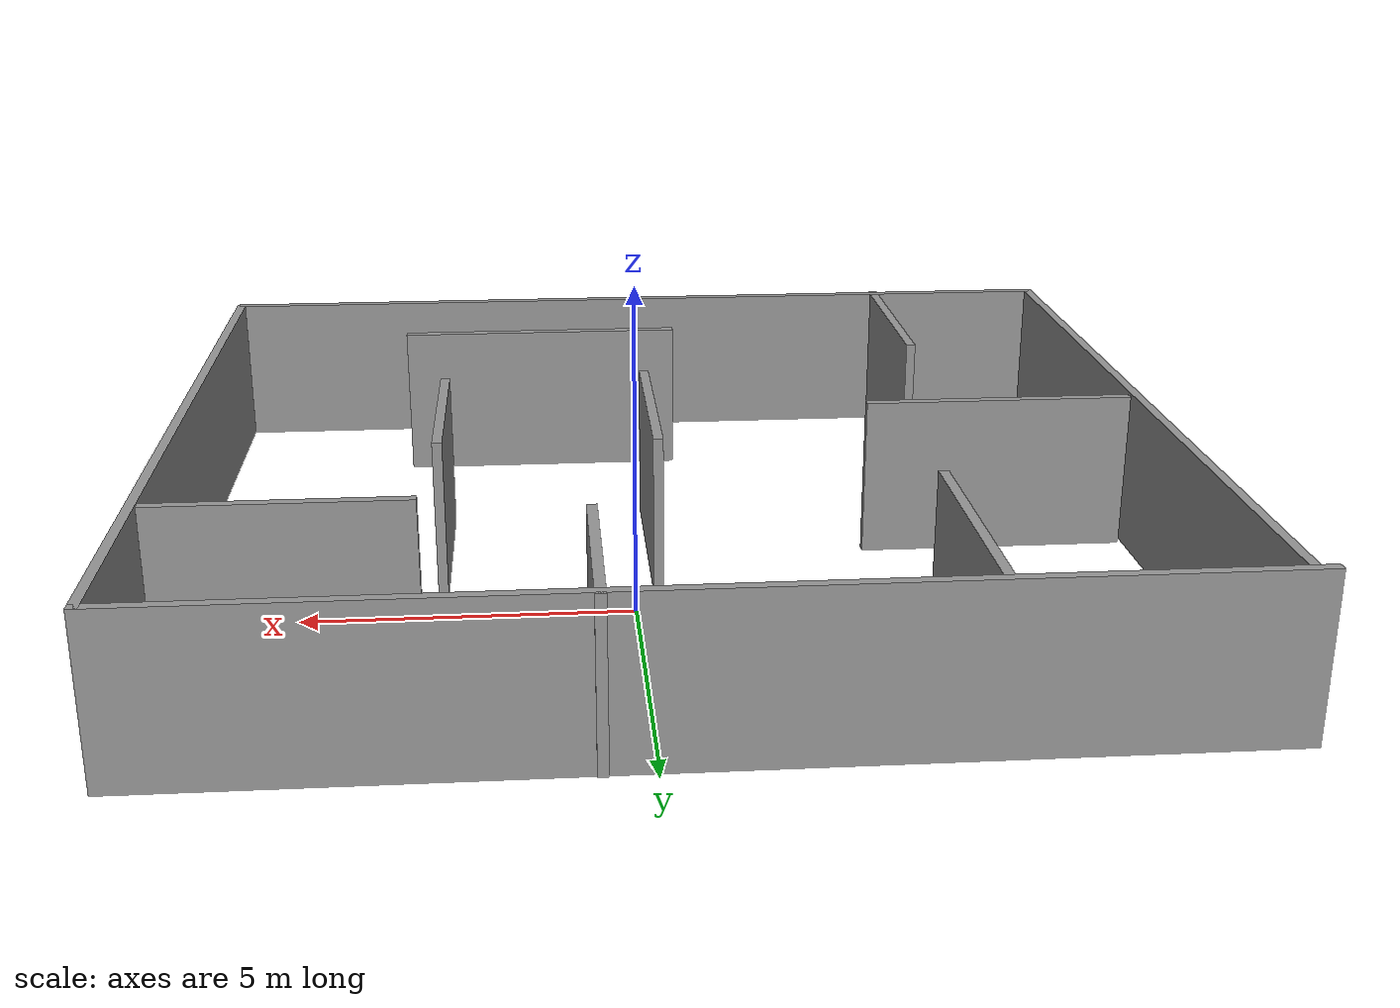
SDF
<?xml version='1.0'?>
<sdf version='1.7'>
  <model name='maze_house'>
    <pose>-0.754672 -2.09552 0 0 -0 0</pose>
    <link name='Wall_23'>
      <collision name='Wall_23_Collision'>
        <geometry>
          <box>
            <size>3.75 0.15 2.5</size>
          </box>
        </geometry>
        <pose>0 0 1.25 0 -0 0</pose>
      </collision>
      <visual name='Wall_23_Visual'>
        <pose>0 0 1.25 0 -0 0</pose>
        <geometry>
          <box>
            <size>3.75 0.15 2.5</size>
          </box>
        </geometry>
        <material>
          <script>
            <uri>file://media/materials/scripts/gazebo.material</uri>
            <name>Gazebo/Grey</name>
          </script>
          <ambient>1 1 1 1</ambient>
        </material>
        <meta>
          <layer>0</layer>
        </meta>
      </visual>
      <pose>-4.39045 -5.15967 0 0 -0 1.5708</pose>
    </link>
    <link name='Wall_27'>
      <collision name='Wall_27_Collision'>
        <geometry>
          <box>
            <size>4.75 0.15 2.5</size>
          </box>
        </geometry>
        <pose>0 0 1.25 0 -0 0</pose>
      </collision>
      <visual name='Wall_27_Visual'>
        <pose>0 0 1.25 0 -0 0</pose>
        <geometry>
          <box>
            <size>4.75 0.15 2.5</size>
          </box>
        </geometry>
        <material>
          <script>
            <uri>file://media/materials/scripts/gazebo.material</uri>
            <name>Gazebo/Grey</name>
          </script>
          <ambient>1 1 1 1</ambient>
        </material>
        <meta>
          <layer>0</layer>
        </meta>
      </visual>
      <pose>2.07306 -4.69287 0 0 -0 0</pose>
    </link>
    <link name='Wall_29'>
      <collision name='Wall_29_Collision'>
        <geometry>
          <box>
            <size>3.25 0.15 2.5</size>
          </box>
        </geometry>
        <pose>0 0 1.25 0 -0 0</pose>
      </collision>
      <visual name='Wall_29_Visual'>
        <pose>0 0 1.25 0 -0 0</pose>
        <geometry>
          <box>
            <size>3.25 0.15 2.5</size>
          </box>
        </geometry>
        <material>
          <script>
            <uri>file://media/materials/scripts/gazebo.material</uri>
            <name>Gazebo/Grey</name>
          </script>
          <ambient>1 1 1 1</ambient>
        </material>
        <meta>
          <layer>0</layer>
        </meta>
      </visual>
      <pose>3.659 -0.275171 0 0 -0 -1.5708</pose>
    </link>
    <link name='Wall_35'>
      <collision name='Wall_35_Collision'>
        <geometry>
          <box>
            <size>3.5 0.15 2.5</size>
          </box>
        </geometry>
        <pose>0 0 1.25 0 -0 0</pose>
      </collision>
      <visual name='Wall_35_Visual'>
        <pose>0 0 1.25 0 -0 0</pose>
        <geometry>
          <box>
            <size>3.5 0.15 2.5</size>
          </box>
        </geometry>
        <material>
          <script>
            <uri>file://media/materials/scripts/gazebo.material</uri>
            <name>Gazebo/Grey</name>
          </script>
          <ambient>1 1 1 1</ambient>
        </material>
        <meta>
          <layer>0</layer>
        </meta>
      </visual>
      <pose>0.374451 -0.35391 0 0 -0 -1.5708</pose>
    </link>
    <link name='Wall_37'>
      <collision name='Wall_37_Collision'>
        <geometry>
          <box>
            <size>4.25 0.15 2.5</size>
          </box>
        </geometry>
        <pose>0 0 1.25 0 -0 0</pose>
      </collision>
      <visual name='Wall_37_Visual'>
        <pose>0 0 1.25 0 -0 0</pose>
        <geometry>
          <box>
            <size>4.25 0.15 2.5</size>
          </box>
        </geometry>
        <material>
          <script>
            <uri>file://media/materials/scripts/gazebo.material</uri>
            <name>Gazebo/Grey</name>
          </script>
          <ambient>1 1 1 1</ambient>
        </material>
        <meta>
          <layer>0</layer>
        </meta>
      </visual>
      <pose>-5.16239 -0.113008 0 0 -0 0</pose>
    </link>
    <link name='Wall_4'>
      <collision name='Wall_4_Collision'>
        <geometry>
          <box>
            <size>15.5 0.15 2.5</size>
          </box>
        </geometry>
        <pose>0 0 1.25 0 -0 0</pose>
      </collision>
      <visual name='Wall_4_Visual'>
        <pose>0 0 1.25 0 -0 0</pose>
        <geometry>
          <box>
            <size>15.5 0.15 2.5</size>
          </box>
        </geometry>
        <material>
          <script>
            <uri>file://media/materials/scripts/gazebo.material</uri>
            <name>Gazebo/Grey</name>
          </script>
          <ambient>1 1 1 1</ambient>
        </material>
        <meta>
          <layer>0</layer>
        </meta>
      </visual>
      <pose>-0 6.9187 0 0 -0 0</pose>
    </link>
    <link name='Wall_41'>
      <collision name='Wall_41_Collision'>
        <geometry>
          <box>
            <size>3.75 0.15 2.5</size>
          </box>
        </geometry>
        <pose>0 0 1.25 0 -0 0</pose>
      </collision>
      <visual name='Wall_41_Visual'>
        <pose>0 0 1.25 0 -0 0</pose>
        <geometry>
          <box>
            <size>3.75 0.15 2.5</size>
          </box>
        </geometry>
        <material>
          <script>
            <uri>file://media/materials/scripts/gazebo.material</uri>
            <name>Gazebo/Grey</name>
          </script>
          <ambient>1 1 1 1</ambient>
        </material>
        <meta>
          <layer>0</layer>
        </meta>
      </visual>
      <pose>-3.56521 4.98207 0 0 -0 -1.5708</pose>
    </link>
    <link name='Wall_43'>
      <collision name='Wall_43_Collision'>
        <geometry>
          <box>
            <size>3 0.15 2.5</size>
          </box>
        </geometry>
        <pose>0 0 1.25 0 -0 0</pose>
      </collision>
      <visual name='Wall_43_Visual'>
        <pose>0 0 1.25 0 -0 0</pose>
        <geometry>
          <box>
            <size>3 0.15 2.5</size>
          </box>
        </geometry>
        <material>
          <script>
            <uri>file://media/materials/scripts/gazebo.material</uri>
            <name>Gazebo/Grey</name>
          </script>
          <ambient>1 1 1 1</ambient>
        </material>
        <meta>
          <layer>0</layer>
        </meta>
      </visual>
      <pose>1.46052 5.53467 0 0 -0 -1.5708</pose>
    </link>
    <link name='Wall_45'>
      <collision name='Wall_45_Collision'>
        <geometry>
          <box>
            <size>3.75 0.15 2.5</size>
          </box>
        </geometry>
        <pose>0 0 1.25 0 -0 0</pose>
      </collision>
      <visual name='Wall_45_Visual'>
        <pose>0 0 1.25 0 -0 0</pose>
        <geometry>
          <box>
            <size>3.75 0.15 2.5</size>
          </box>
        </geometry>
        <material>
          <script>
            <uri>file://media/materials/scripts/gazebo.material</uri>
            <name>Gazebo/Grey</name>
          </script>
          <ambient>1 1 1 1</ambient>
        </material>
        <meta>
          <layer>0</layer>
        </meta>
      </visual>
      <pose>5.70774 3.60804 0 0 -0 0</pose>
    </link>
    <link name='Wall_5'>
      <collision name='Wall_5_Collision'>
        <geometry>
          <box>
            <size>14 0.15 2.5</size>
          </box>
        </geometry>
        <pose>0 0 1.25 0 -0 0</pose>
      </collision>
      <visual name='Wall_5_Visual'>
        <pose>0 0 1.25 0 -0 0</pose>
        <geometry>
          <box>
            <size>14 0.15 2.5</size>
          </box>
        </geometry>
        <material>
          <script>
            <uri>file://media/materials/scripts/gazebo.material</uri>
            <name>Gazebo/Grey</name>
          </script>
          <ambient>1 1 1 1</ambient>
        </material>
        <meta>
          <layer>0</layer>
        </meta>
      </visual>
      <pose>7.675 -0.006303 0 0 -0 -1.5708</pose>
    </link>
    <link name='Wall_6'>
      <collision name='Wall_6_Collision'>
        <geometry>
          <box>
            <size>15.25 0.15 2.5</size>
          </box>
        </geometry>
        <pose>0 0 1.25 0 -0 0</pose>
      </collision>
      <visual name='Wall_6_Visual'>
        <pose>0 0 1.25 0 -0 0</pose>
        <geometry>
          <box>
            <size>15.25 0.15 2.5</size>
          </box>
        </geometry>
        <material>
          <script>
            <uri>file://media/materials/scripts/gazebo.material</uri>
            <name>Gazebo/Grey</name>
          </script>
          <ambient>1 1 1 1</ambient>
        </material>
        <meta>
          <layer>0</layer>
        </meta>
      </visual>
      <pose>0.125 -6.9313 0 0 -0 3.14159</pose>
    </link>
    <link name='Wall_7'>
      <collision name='Wall_7_Collision'>
        <geometry>
          <box>
            <size>14 0.15 2.5</size>
          </box>
        </geometry>
        <pose>0 0 1.25 0 -0 0</pose>
      </collision>
      <visual name='Wall_7_Visual'>
        <pose>0 0 1.25 0 -0 0</pose>
        <geometry>
          <box>
            <size>14 0.15 2.5</size>
          </box>
        </geometry>
        <material>
          <script>
            <uri>file://media/materials/scripts/gazebo.material</uri>
            <name>Gazebo/Grey</name>
          </script>
          <ambient>1 1 1 1</ambient>
        </material>
        <meta>
          <layer>0</layer>
        </meta>
      </visual>
      <pose>-7.425 -0.006303 0 0 -0 1.5708</pose>
    </link>
    <static>1</static>
  </model>
</sdf>
